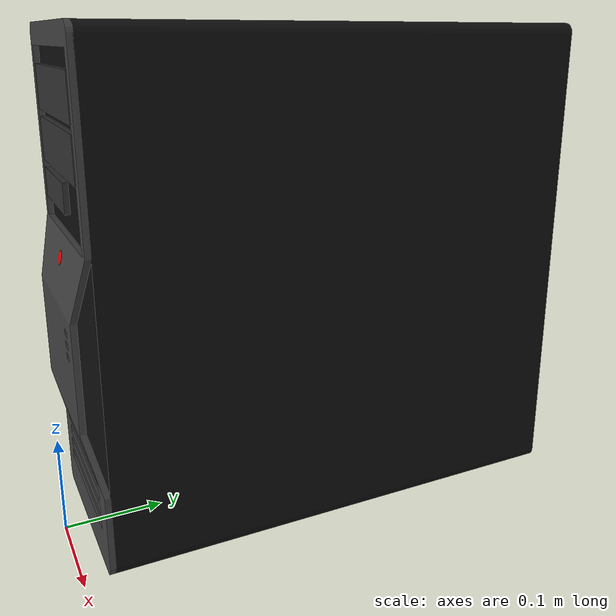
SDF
<?xml version="1.0"?>

<sdf version="1.6">
  <model name='computer_case'>
    <static>true</static>
    <link name="body">

        <visual name="visual">
          <geometry>
            <mesh><uri>model://models/computer_case/meshes/computer_case.dae</uri></mesh>
          </geometry>
        </visual>

        <collision name="collision">
          <geometry>
            <mesh><uri>model://models/computer_case/meshes/computer_case.dae</uri></mesh>
          </geometry>
        </collision>

    </link>
  </model>
</sdf>
